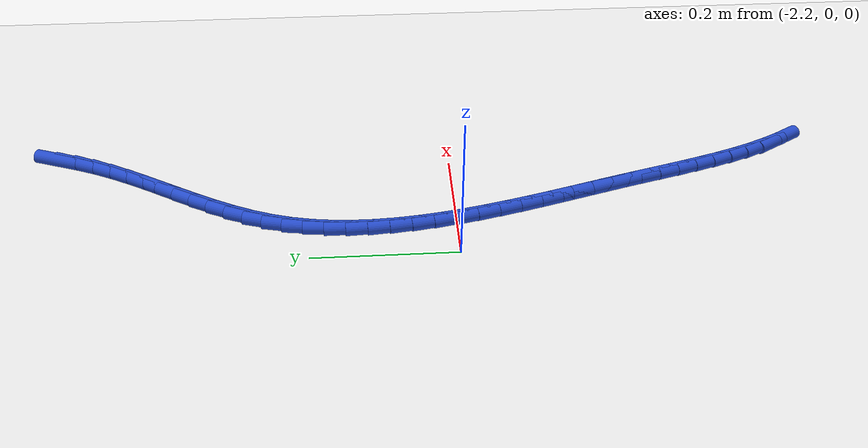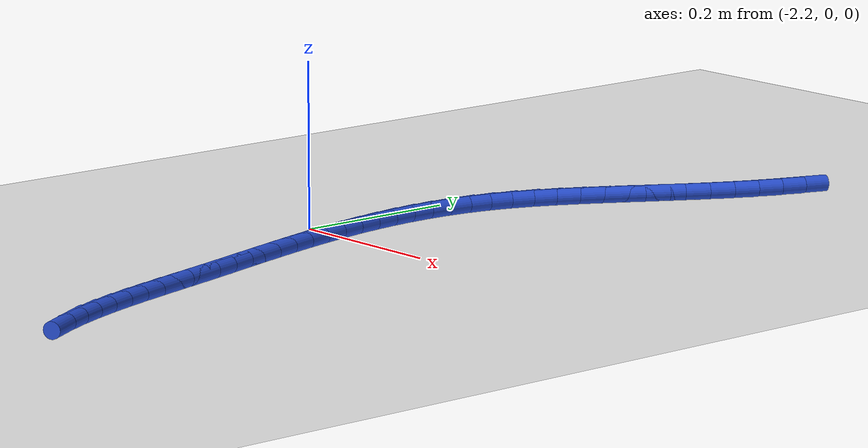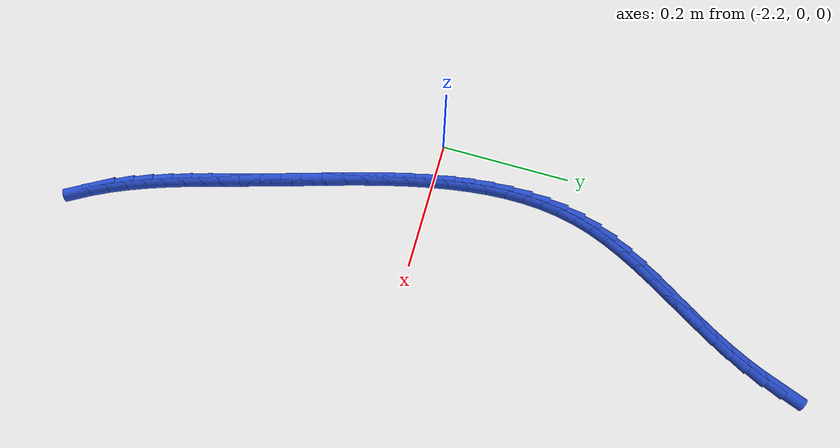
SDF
<sdf version="1.6">
 <world name="default">
  <model name="ground_plane">
   <static>1</static>
   <link name="link">
    <collision name="collision">
     <geometry><plane><normal>0 0 1</normal><size>100 100</size></plane></geometry>
     <surface><friction><ode><mu>100</mu><mu2>50</mu2></ode></friction></surface>
    </collision>
    <visual name="visual">
     <cast_shadows>0</cast_shadows>
     <geometry><plane><normal>0 0 1</normal><size>100 100</size></plane></geometry>
     <material>
      <script><uri>file://media/materials/scripts/gazebo.material</uri><name>Gazebo/WhiteGlow</name></script>
     </material>
    </visual>
   </link>
  </model>
  <model name="line">
   <link name="link_96">
    <pose>-1.96965803242127 0.5722199487798562 0.01 0 1.57 1.217744059363952</pose>
    <collision name="collision">
     <geometry><cylinder><radius>0.01</radius><length>0.08</length></cylinder></geometry>
    </collision>
    <visual name="visual">
     <material>
      <script><name>Gazebo/Blue</name><uri>file://media/materials/scripts/gazebo.material</uri></script>
     </material>
     <geometry><cylinder><radius>0.01</radius><length>0.08</length></cylinder></geometry>
    </visual>
   </link>
   <link name="link_97">
    <pose>-1.9801510414167296 0.5437443563967496 0.01 0 1.57 1.1717639298329536</pose>
    <collision name="collision">
     <geometry><cylinder><radius>0.01</radius><length>0.08</length></cylinder></geometry>
    </collision>
    <visual name="visual">
     <material>
      <script><name>Gazebo/Blue</name><uri>file://media/materials/scripts/gazebo.material</uri></script>
     </material>
     <geometry><cylinder><radius>0.01</radius><length>0.08</length></cylinder></geometry>
    </visual>
   </link>
   <link name="link_98">
    <pose>-1.991950160787447 0.515761356043261 0.01 0 1.57 1.1192237380699184</pose>
    <collision name="collision">
     <geometry><cylinder><radius>0.01</radius><length>0.08</length></cylinder></geometry>
    </collision>
    <visual name="visual">
     <material>
      <script><name>Gazebo/Blue</name><uri>file://media/materials/scripts/gazebo.material</uri></script>
     </material>
     <geometry><cylinder><radius>0.01</radius><length>0.08</length></cylinder></geometry>
    </visual>
   </link>
   <link name="link_99">
    <pose>-2.005226154514418 0.4883879519541851 0.01 0 1.57 1.077652524539303</pose>
    <collision name="collision">
     <geometry><cylinder><radius>0.01</radius><length>0.08</length></cylinder></geometry>
    </collision>
    <visual name="visual">
     <material>
      <script><name>Gazebo/Blue</name><uri>file://media/materials/scripts/gazebo.material</uri></script>
     </material>
     <geometry><cylinder><radius>0.01</radius><length>0.08</length></cylinder></geometry>
    </visual>
   </link>
   <link name="link_100">
    <pose>-2.0196575186634944 0.4615355634902747 0.01 0 1.57 1.0486334137116007</pose>
    <collision name="collision">
     <geometry><cylinder><radius>0.01</radius><length>0.08</length></cylinder></geometry>
    </collision>
    <visual name="visual">
     <material>
      <script><name>Gazebo/Blue</name><uri>file://media/materials/scripts/gazebo.material</uri></script>
     </material>
     <geometry><cylinder><radius>0.01</radius><length>0.08</length></cylinder></geometry>
    </visual>
   </link>
   <link name="link_101">
    <pose>-2.0348725992216914 0.43509466593422264 0.01 0 1.57 1.0319596921955931</pose>
    <collision name="collision">
     <geometry><cylinder><radius>0.01</radius><length>0.08</length></cylinder></geometry>
    </collision>
    <visual name="visual">
     <material>
      <script><name>Gazebo/Blue</name><uri>file://media/materials/scripts/gazebo.material</uri></script>
     </material>
     <geometry><cylinder><radius>0.01</radius><length>0.08</length></cylinder></geometry>
    </visual>
   </link>
   <link name="link_102">
    <pose>-2.0504997421760263 0.408955734568723 0.01 0 1.57 1.02755743365559</pose>
    <collision name="collision">
     <geometry><cylinder><radius>0.01</radius><length>0.08</length></cylinder></geometry>
    </collision>
    <visual name="visual">
     <material>
      <script><name>Gazebo/Blue</name><uri>file://media/materials/scripts/gazebo.material</uri></script>
     </material>
     <geometry><cylinder><radius>0.01</radius><length>0.08</length></cylinder></geometry>
    </visual>
   </link>
   <link name="link_103">
    <pose>-2.0661672935135145 0.38300924467646863 0.01 0 1.57 1.0355624730435122</pose>
    <collision name="collision">
     <geometry><cylinder><radius>0.01</radius><length>0.08</length></cylinder></geometry>
    </collision>
    <visual name="visual">
     <material>
      <script><name>Gazebo/Blue</name><uri>file://media/materials/scripts/gazebo.material</uri></script>
     </material>
     <geometry><cylinder><radius>0.01</radius><length>0.08</length></cylinder></geometry>
    </visual>
   </link>
   <link name="link_104">
    <pose>-2.0815035992211732 0.357145671540154 0.01 0 1.57 1.0563501234918613</pose>
    <collision name="collision">
     <geometry><cylinder><radius>0.01</radius><length>0.08</length></cylinder></geometry>
    </collision>
    <visual name="visual">
     <material>
      <script><name>Gazebo/Blue</name><uri>file://media/materials/scripts/gazebo.material</uri></script>
     </material>
     <geometry><cylinder><radius>0.01</radius><length>0.08</length></cylinder></geometry>
    </visual>
   </link>
   <link name="link_105">
    <pose>-2.0961370052860184 0.33125549044247166 0.01 0 1.57 1.0905161041369003</pose>
    <collision name="collision">
     <geometry><cylinder><radius>0.01</radius><length>0.08</length></cylinder></geometry>
    </collision>
    <visual name="visual">
     <material>
      <script><name>Gazebo/Blue</name><uri>file://media/materials/scripts/gazebo.material</uri></script>
     </material>
     <geometry><cylinder><radius>0.01</radius><length>0.08</length></cylinder></geometry>
    </visual>
   </link>
   <link name="link_106">
    <pose>-2.1096958576950655 0.30522917666611593 0.01 0 1.57 1.138792802202392</pose>
    <collision name="collision">
     <geometry><cylinder><radius>0.01</radius><length>0.08</length></cylinder></geometry>
    </collision>
    <visual name="visual">
     <material>
      <script><name>Gazebo/Blue</name><uri>file://media/materials/scripts/gazebo.material</uri></script>
     </material>
     <geometry><cylinder><radius>0.01</radius><length>0.08</length></cylinder></geometry>
    </visual>
   </link>
   <link name="link_107">
    <pose>-2.1218085024353317 0.27895720549378006 0.01 0 1.57 1.2018710707104865</pose>
    <collision name="collision">
     <geometry><cylinder><radius>0.01</radius><length>0.08</length></cylinder></geometry>
    </collision>
    <visual name="visual">
     <material>
      <script><name>Gazebo/Blue</name><uri>file://media/materials/scripts/gazebo.material</uri></script>
     </material>
     <geometry><cylinder><radius>0.01</radius><length>0.08</length></cylinder></geometry>
    </visual>
   </link>
   <link name="link_108">
    <pose>-2.1321032854938324 0.2523300522081573 0.01 0 1.57 1.2795725295707694</pose>
    <collision name="collision">
     <geometry><cylinder><radius>0.01</radius><length>0.08</length></cylinder></geometry>
    </collision>
    <visual name="visual">
     <material>
      <script><name>Gazebo/Blue</name><uri>file://media/materials/scripts/gazebo.material</uri></script>
     </material>
     <geometry><cylinder><radius>0.01</radius><length>0.08</length></cylinder></geometry>
    </visual>
   </link>
   <link name="link_109">
    <pose>-2.1402227658263797 0.22524218795603074 0.01 0 1.57 1.3615636114087608</pose>
    <collision name="collision">
     <geometry><cylinder><radius>0.01</radius><length>0.08</length></cylinder></geometry>
    </collision>
    <visual name="visual">
     <material>
      <script><name>Gazebo/Blue</name><uri>file://media/materials/scripts/gazebo.material</uri></script>
     </material>
     <geometry><cylinder><radius>0.01</radius><length>0.08</length></cylinder></geometry>
    </visual>
   </link>
   <link name="link_110">
    <pose>-2.1460787752582644 0.19766378782787566 0.01 0 1.57 1.437979218198379</pose>
    <collision name="collision">
     <geometry><cylinder><radius>0.01</radius><length>0.08</length></cylinder></geometry>
    </collision>
    <visual name="visual">
     <material>
      <script><name>Gazebo/Blue</name><uri>file://media/materials/scripts/gazebo.material</uri></script>
     </material>
     <geometry><cylinder><radius>0.01</radius><length>0.08</length></cylinder></geometry>
    </visual>
   </link>
   <link name="link_111">
    <pose>-2.1498238314638023 0.1696326938425063 0.01 0 1.57 1.5077692016858573</pose>
    <collision name="collision">
     <geometry><cylinder><radius>0.01</radius><length>0.08</length></cylinder></geometry>
    </collision>
    <visual name="visual">
     <material>
      <script><name>Gazebo/Blue</name><uri>file://media/materials/scripts/gazebo.material</uri></script>
     </material>
     <geometry><cylinder><radius>0.01</radius><length>0.08</length></cylinder></geometry>
    </visual>
   </link>
   <link name="link_112">
    <pose>-2.1516189250965625 0.14118913013003154 0.01 0 1.57 1.5705838839170299</pose>
    <collision name="collision">
     <geometry><cylinder><radius>0.01</radius><length>0.08</length></cylinder></geometry>
    </collision>
    <visual name="visual">
     <material>
      <script><name>Gazebo/Blue</name><uri>file://media/materials/scripts/gazebo.material</uri></script>
     </material>
     <geometry><cylinder><radius>0.01</radius><length>0.08</length></cylinder></geometry>
    </visual>
   </link>
   <link name="link_113">
    <pose>-2.1516250468101124 0.11237332082056149 0.01 0 1.57 -1.5152110979093103</pose>
    <collision name="collision">
     <geometry><cylinder><radius>0.01</radius><length>0.08</length></cylinder></geometry>
    </collision>
    <visual name="visual">
     <material>
      <script><name>Gazebo/Blue</name><uri>file://media/materials/scripts/gazebo.material</uri></script>
     </material>
     <geometry><cylinder><radius>0.01</radius><length>0.08</length></cylinder></geometry>
    </visual>
   </link>
   <link name="link_114">
    <pose>-2.15000318725802 0.08322549004420496 0.01 0 1.57 -1.466257306274866</pose>
    <collision name="collision">
     <geometry><cylinder><radius>0.01</radius><length>0.08</length></cylinder></geometry>
    </collision>
    <visual name="visual">
     <material>
      <script><name>Gazebo/Blue</name><uri>file://media/materials/scripts/gazebo.material</uri></script>
     </material>
     <geometry><cylinder><radius>0.01</radius><length>0.08</length></cylinder></geometry>
    </visual>
   </link>
   <link name="link_115">
    <pose>-2.146914337093853 0.05378586193107211 0.01 0 1.57 -1.4238447373525547</pose>
    <collision name="collision">
     <geometry><cylinder><radius>0.01</radius><length>0.08</length></cylinder></geometry>
    </collision>
    <visual name="visual">
     <material>
      <script><name>Gazebo/Blue</name><uri>file://media/materials/scripts/gazebo.material</uri></script>
     </material>
     <geometry><cylinder><radius>0.01</radius><length>0.08</length></cylinder></geometry>
    </visual>
   </link>
   <link name="link_116">
    <pose>-2.1425194869711777 0.024094660611272044 0.01 0 1.57 -1.3876095246405262</pose>
    <collision name="collision">
     <geometry><cylinder><radius>0.01</radius><length>0.08</length></cylinder></geometry>
    </collision>
    <visual name="visual">
     <material>
      <script><name>Gazebo/Blue</name><uri>file://media/materials/scripts/gazebo.material</uri></script>
     </material>
     <geometry><cylinder><radius>0.01</radius><length>0.08</length></cylinder></geometry>
    </visual>
   </link>
   <link name="link_117">
    <pose>-2.1369796275435626 -0.0058078897850864855 0.01 0 1.57 -1.357176309724417</pose>
    <collision name="collision">
     <geometry><cylinder><radius>0.01</radius><length>0.08</length></cylinder></geometry>
    </collision>
    <visual name="visual">
     <material>
      <script><name>Gazebo/Blue</name><uri>file://media/materials/scripts/gazebo.material</uri></script>
     </material>
     <geometry><cylinder><radius>0.01</radius><length>0.08</length></cylinder></geometry>
    </visual>
   </link>
   <link name="link_118">
    <pose>-2.130455749464575 -0.03588156512789246 0.01 0 1.57 -1.3321917864373944</pose>
    <collision name="collision">
     <geometry><cylinder><radius>0.01</radius><length>0.08</length></cylinder></geometry>
    </collision>
    <visual name="visual">
     <material>
      <script><name>Gazebo/Blue</name><uri>file://media/materials/scripts/gazebo.material</uri></script>
     </material>
     <geometry><cylinder><radius>0.01</radius><length>0.08</length></cylinder></geometry>
    </visual>
   </link>
   <link name="link_119">
    <pose>-2.123108843387783 -0.06608614128703721 0.01 0 1.57 -1.31234590771409</pose>
    <collision name="collision">
     <geometry><cylinder><radius>0.01</radius><length>0.08</length></cylinder></geometry>
    </collision>
    <visual name="visual">
     <material>
      <script><name>Gazebo/Blue</name><uri>file://media/materials/scripts/gazebo.material</uri></script>
     </material>
     <geometry><cylinder><radius>0.01</radius><length>0.08</length></cylinder></geometry>
    </visual>
   </link>
   <link name="link_120">
    <pose>-2.1150998999667534 -0.09638139413241126 0.01 0 1.57 -1.2973845316781676</pose>
    <collision name="collision">
     <geometry><cylinder><radius>0.01</radius><length>0.08</length></cylinder></geometry>
    </collision>
    <visual name="visual">
     <material>
      <script><name>Gazebo/Blue</name><uri>file://media/materials/scripts/gazebo.material</uri></script>
     </material>
     <geometry><cylinder><radius>0.01</radius><length>0.08</length></cylinder></geometry>
    </visual>
   </link>
   <link name="link_121">
    <pose>-2.106589909855055 -0.1267270995339051 0.01 0 1.57 -1.2871166136043242</pose>
    <collision name="collision">
     <geometry><cylinder><radius>0.01</radius><length>0.08</length></cylinder></geometry>
    </collision>
    <visual name="visual">
     <material>
      <script><name>Gazebo/Blue</name><uri>file://media/materials/scripts/gazebo.material</uri></script>
     </material>
     <geometry><cylinder><radius>0.01</radius><length>0.08</length></cylinder></geometry>
    </visual>
   </link>
   <link name="link_122">
    <pose>-2.0977398637062548 -0.1570830333614101 0.01 0 1.57 -1.2814182515076884</pose>
    <collision name="collision">
     <geometry><cylinder><radius>0.01</radius><length>0.08</length></cylinder></geometry>
    </collision>
    <visual name="visual">
     <material>
      <script><name>Gazebo/Blue</name><uri>file://media/materials/scripts/gazebo.material</uri></script>
     </material>
     <geometry><cylinder><radius>0.01</radius><length>0.08</length></cylinder></geometry>
    </visual>
   </link>
   <link name="link_123">
    <pose>-2.0887107521739194 -0.1874089714848151 0.01 0 1.57 -1.2802351746968232</pose>
    <collision name="collision">
     <geometry><cylinder><radius>0.01</radius><length>0.08</length></cylinder></geometry>
    </collision>
    <visual name="visual">
     <material>
      <script><name>Gazebo/Blue</name><uri>file://media/materials/scripts/gazebo.material</uri></script>
     </material>
     <geometry><cylinder><radius>0.01</radius><length>0.08</length></cylinder></geometry>
    </visual>
   </link>
   <link name="link_124">
    <pose>-2.0796635659116176 -0.21766468977401154 0.01 0 1.57 -1.2835846799290065</pose>
    <collision name="collision">
     <geometry><cylinder><radius>0.01</radius><length>0.08</length></cylinder></geometry>
    </collision>
    <visual name="visual">
     <material>
      <script><name>Gazebo/Blue</name><uri>file://media/materials/scripts/gazebo.material</uri></script>
     </material>
     <geometry><cylinder><radius>0.01</radius><length>0.08</length></cylinder></geometry>
    </visual>
   </link>
   <link name="link_125">
    <pose>-2.070759295572917 -0.24780996409888983 0.01 0 1.57 -1.290791317593342</pose>
    <collision name="collision">
     <geometry><cylinder><radius>0.01</radius><length>0.08</length></cylinder></geometry>
    </collision>
    <visual name="visual">
     <material>
      <script><name>Gazebo/Blue</name><uri>file://media/materials/scripts/gazebo.material</uri></script>
     </material>
     <geometry><cylinder><radius>0.01</radius><length>0.08</length></cylinder></geometry>
    </visual>
   </link>
   <link name="link_126">
    <pose>-2.0621347502216767 -0.2778021496420483 0.01 0 1.57 -1.2948493039382711</pose>
    <collision name="collision">
     <geometry><cylinder><radius>0.01</radius><length>0.08</length></cylinder></geometry>
    </collision>
    <visual name="visual">
     <material>
      <script><name>Gazebo/Blue</name><uri>file://media/materials/scripts/gazebo.material</uri></script>
     </material>
     <geometry><cylinder><radius>0.01</radius><length>0.08</length></cylinder></geometry>
    </visual>
   </link>
   <link name="link_127">
    <pose>-2.0537035760600797 -0.30757626196697213 0.01 0 1.57 -1.2918035321951749</pose>
    <collision name="collision">
     <geometry><cylinder><radius>0.01</radius><length>0.08</length></cylinder></geometry>
    </collision>
    <visual name="visual">
     <material>
      <script><name>Gazebo/Blue</name><uri>file://media/materials/scripts/gazebo.material</uri></script>
     </material>
     <geometry><cylinder><radius>0.01</radius><length>0.08</length></cylinder></geometry>
    </visual>
   </link>
   <link name="link_128">
    <pose>-2.0452589020755876 -0.33705525231491906 0.01 0 1.57 -1.2814144774543383</pose>
    <collision name="collision">
     <geometry><cylinder><radius>0.01</radius><length>0.08</length></cylinder></geometry>
    </collision>
    <visual name="visual">
     <material>
      <script><name>Gazebo/Blue</name><uri>file://media/materials/scripts/gazebo.material</uri></script>
     </material>
     <geometry><cylinder><radius>0.01</radius><length>0.08</length></cylinder></geometry>
    </visual>
   </link>
   <link name="link_129">
    <pose>-2.036592681000369 -0.3661619541786322 0.01 0 1.57 -1.2634534824988441</pose>
    <collision name="collision">
     <geometry><cylinder><radius>0.01</radius><length>0.08</length></cylinder></geometry>
    </collision>
    <visual name="visual">
     <material>
      <script><name>Gazebo/Blue</name><uri>file://media/materials/scripts/gazebo.material</uri></script>
     </material>
     <geometry><cylinder><radius>0.01</radius><length>0.08</length></cylinder></geometry>
    </visual>
   </link>
   <link name="link_130">
    <pose>-2.0274968655665915 -0.3948192010508544 0.01 0 1.57 -1.23768114062272</pose>
    <collision name="collision">
     <geometry><cylinder><radius>0.01</radius><length>0.08</length></cylinder></geometry>
    </collision>
    <visual name="visual">
     <material>
      <script><name>Gazebo/Blue</name><uri>file://media/materials/scripts/gazebo.material</uri></script>
     </material>
     <geometry><cylinder><radius>0.01</radius><length>0.08</length></cylinder></geometry>
    </visual>
   </link>
   <link name="link_131">
    <pose>-2.0177634085064224 -0.42294982642432966 0.01 0 1.57 -1.2038788309149941</pose>
    <collision name="collision">
     <geometry><cylinder><radius>0.01</radius><length>0.08</length></cylinder></geometry>
    </collision>
    <visual name="visual">
     <material>
      <script><name>Gazebo/Blue</name><uri>file://media/materials/scripts/gazebo.material</uri></script>
     </material>
     <geometry><cylinder><radius>0.01</radius><length>0.08</length></cylinder></geometry>
    </visual>
   </link>
   <link name="link_132">
    <pose>-2.0071842625520286 -0.4504766637917997 0.01 0 1.57 -1.1618989657195793</pose>
    <collision name="collision">
     <geometry><cylinder><radius>0.01</radius><length>0.08</length></cylinder></geometry>
    </collision>
    <visual name="visual">
     <material>
      <script><name>Gazebo/Blue</name><uri>file://media/materials/scripts/gazebo.material</uri></script>
     </material>
     <geometry><cylinder><radius>0.01</radius><length>0.08</length></cylinder></geometry>
    </visual>
   </link>
   <link name="link_133">
    <pose>-1.995551380435578 -0.47732254664600793 0.01 0 1.57 -1.111734975375914</pose>
    <collision name="collision">
     <geometry><cylinder><radius>0.01</radius><length>0.08</length></cylinder></geometry>
    </collision>
    <visual name="visual">
     <material>
      <script><name>Gazebo/Blue</name><uri>file://media/materials/scripts/gazebo.material</uri></script>
     </material>
     <geometry><cylinder><radius>0.01</radius><length>0.08</length></cylinder></geometry>
    </visual>
   </link>
   <link name="link_134">
    <pose>-1.9826567148892373 -0.5034103084796977 0.01 0 1.57 -1.0536074004348361</pose>
    <collision name="collision">
     <geometry><cylinder><radius>0.01</radius><length>0.08</length></cylinder></geometry>
    </collision>
    <visual name="visual">
     <material>
      <script><name>Gazebo/Blue</name><uri>file://media/materials/scripts/gazebo.material</uri></script>
     </material>
     <geometry><cylinder><radius>0.01</radius><length>0.08</length></cylinder></geometry>
    </visual>
   </link>
  </model>
 </world>
</sdf>
